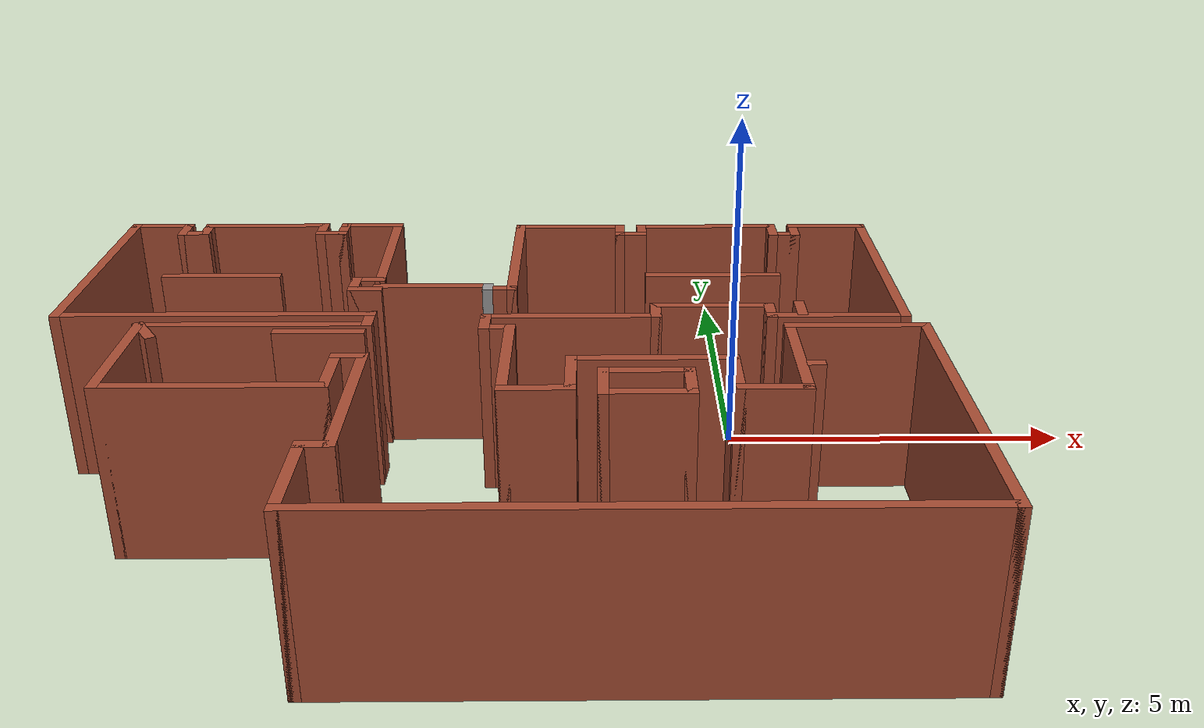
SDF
<?xml version='1.0'?>
<sdf version='1.6'>
  <model name='map_34'>
    <pose frame=''>-3.50648 -1.57327 0 0 -0 0</pose>
    <link name='Wall_0'>
      <collision name='Wall_0_Collision'>
        <geometry>
          <box>
            <size>1 0.15 2.5</size>
          </box>
        </geometry>
        <pose frame=''>0 0 1.25 0 -0 0</pose>
      </collision>
      <visual name='Wall_0_Visual'>
        <pose frame=''>0 0 1.25 0 -0 0</pose>
        <geometry>
          <box>
            <size>1 0.15 2.5</size>
          </box>
        </geometry>
        <material>
          <script>
            <uri>file://media/materials/scripts/gazebo.material</uri>
            <name>Gazebo/Bricks</name>
          </script>
          <ambient>1 1 1 1</ambient>
        </material>
        <meta>
          <layer>0</layer>
        </meta>
      </visual>
      <pose frame=''>-2.15 4.32421 0 0 -0 3.14159</pose>
    </link>
    <link name='Wall_1'>
      <collision name='Wall_1_Collision'>
        <geometry>
          <box>
            <size>0.5 0.15 2.5</size>
          </box>
        </geometry>
        <pose frame=''>0 0 1.25 0 -0 0</pose>
      </collision>
      <visual name='Wall_1_Visual'>
        <pose frame=''>0 0 1.25 0 -0 0</pose>
        <geometry>
          <box>
            <size>0.5 0.15 2.5</size>
          </box>
        </geometry>
        <material>
          <script>
            <uri>file://media/materials/scripts/gazebo.material</uri>
            <name>Gazebo/Bricks</name>
          </script>
          <ambient>1 1 1 1</ambient>
        </material>
        <meta>
          <layer>0</layer>
        </meta>
      </visual>
      <pose frame=''>-2.575 4.14921 0 0 -0 -1.5708</pose>
    </link>
    <link name='Wall_10'>
      <collision name='Wall_10_Collision'>
        <geometry>
          <box>
            <size>0.5 0.15 2.5</size>
          </box>
        </geometry>
        <pose frame=''>0 0 1.25 0 -0 0</pose>
      </collision>
      <visual name='Wall_10_Visual'>
        <pose frame=''>0 0 1.25 0 -0 0</pose>
        <geometry>
          <box>
            <size>0.5 0.15 2.5</size>
          </box>
        </geometry>
        <material>
          <script>
            <uri>file://media/materials/scripts/gazebo.material</uri>
            <name>Gazebo/Bricks</name>
          </script>
          <ambient>1 1 1 1</ambient>
        </material>
        <meta>
          <layer>0</layer>
        </meta>
      </visual>
      <pose frame=''>-4.95 3.97421 0 0 -0 3.14159</pose>
    </link>
    <link name='Wall_11'>
      <collision name='Wall_11_Collision'>
        <geometry>
          <box>
            <size>0.5 0.15 2.5</size>
          </box>
        </geometry>
        <pose frame=''>0 0 1.25 0 -0 0</pose>
      </collision>
      <visual name='Wall_11_Visual'>
        <pose frame=''>0 0 1.25 0 -0 0</pose>
        <geometry>
          <box>
            <size>0.5 0.15 2.5</size>
          </box>
        </geometry>
        <material>
          <script>
            <uri>file://media/materials/scripts/gazebo.material</uri>
            <name>Gazebo/Bricks</name>
          </script>
          <ambient>1 1 1 1</ambient>
        </material>
        <meta>
          <layer>0</layer>
        </meta>
      </visual>
      <pose frame=''>-5.125 4.14921 0 0 -0 1.5708</pose>
    </link>
    <link name='Wall_12'>
      <collision name='Wall_12_Collision'>
        <geometry>
          <box>
            <size>1 0.15 2.5</size>
          </box>
        </geometry>
        <pose frame=''>0 0 1.25 0 -0 0</pose>
      </collision>
      <visual name='Wall_12_Visual'>
        <pose frame=''>0 0 1.25 0 -0 0</pose>
        <geometry>
          <box>
            <size>1 0.15 2.5</size>
          </box>
        </geometry>
        <material>
          <script>
            <uri>file://media/materials/scripts/gazebo.material</uri>
            <name>Gazebo/Bricks</name>
          </script>
          <ambient>1 1 1 1</ambient>
        </material>
        <meta>
          <layer>0</layer>
        </meta>
      </visual>
      <pose frame=''>-5.55 4.32421 0 0 -0 3.14159</pose>
    </link>
    <link name='Wall_13'>
      <collision name='Wall_13_Collision'>
        <geometry>
          <box>
            <size>3.75 0.15 2.5</size>
          </box>
        </geometry>
        <pose frame=''>0 0 1.25 0 -0 0</pose>
      </collision>
      <visual name='Wall_13_Visual'>
        <pose frame=''>0 0 1.25 0 -0 0</pose>
        <geometry>
          <box>
            <size>3.75 0.15 2.5</size>
          </box>
        </geometry>
        <material>
          <script>
            <uri>file://media/materials/scripts/gazebo.material</uri>
            <name>Gazebo/Bricks</name>
          </script>
          <ambient>1 1 1 1</ambient>
        </material>
        <meta>
          <layer>0</layer>
        </meta>
      </visual>
      <pose frame=''>-5.975 2.52421 0 0 -0 -1.5708</pose>
    </link>
    <link name='Wall_14'>
      <collision name='Wall_14_Collision'>
        <geometry>
          <box>
            <size>4.5 0.15 2.5</size>
          </box>
        </geometry>
        <pose frame=''>0 0 1.25 0 -0 0</pose>
      </collision>
      <visual name='Wall_14_Visual'>
        <pose frame=''>0 0 1.25 0 -0 0</pose>
        <geometry>
          <box>
            <size>4.5 0.15 2.5</size>
          </box>
        </geometry>
        <material>
          <script>
            <uri>file://media/materials/scripts/gazebo.material</uri>
            <name>Gazebo/Bricks</name>
          </script>
          <ambient>1 1 1 1</ambient>
        </material>
        <meta>
          <layer>0</layer>
        </meta>
      </visual>
      <pose frame=''>-3.8 0.724211 0 0 -0 0</pose>
    </link>
    <link name='Wall_15'>
      <collision name='Wall_15_Collision'>
        <geometry>
          <box>
            <size>0.5 0.15 2.5</size>
          </box>
        </geometry>
        <pose frame=''>0 0 1.25 0 -0 0</pose>
      </collision>
      <visual name='Wall_15_Visual'>
        <pose frame=''>0 0 1.25 0 -0 0</pose>
        <geometry>
          <box>
            <size>0.5 0.15 2.5</size>
          </box>
        </geometry>
        <material>
          <script>
            <uri>file://media/materials/scripts/gazebo.material</uri>
            <name>Gazebo/Bricks</name>
          </script>
          <ambient>1 1 1 1</ambient>
        </material>
        <meta>
          <layer>0</layer>
        </meta>
      </visual>
      <pose frame=''>-1.625 0.549211 0 0 -0 -1.5708</pose>
    </link>
    <link name='Wall_16'>
      <collision name='Wall_16_Collision'>
        <geometry>
          <box>
            <size>3.25 0.15 2.5</size>
          </box>
        </geometry>
        <pose frame=''>0 0 1.25 0 -0 0</pose>
      </collision>
      <visual name='Wall_16_Visual'>
        <pose frame=''>0 0 1.25 0 -0 0</pose>
        <geometry>
          <box>
            <size>3.25 0.15 2.5</size>
          </box>
        </geometry>
        <material>
          <script>
            <uri>file://media/materials/scripts/gazebo.material</uri>
            <name>Gazebo/Bricks</name>
          </script>
          <ambient>1 1 1 1</ambient>
        </material>
        <meta>
          <layer>0</layer>
        </meta>
      </visual>
      <pose frame=''>-3.175 0.374211 0 0 -0 3.14159</pose>
    </link>
    <link name='Wall_17'>
      <collision name='Wall_17_Collision'>
        <geometry>
          <box>
            <size>2 0.15 2.5</size>
          </box>
        </geometry>
        <pose frame=''>0 0 1.25 0 -0 0</pose>
      </collision>
      <visual name='Wall_17_Visual'>
        <pose frame=''>0 0 1.25 0 -0 0</pose>
        <geometry>
          <box>
            <size>2 0.15 2.5</size>
          </box>
        </geometry>
        <material>
          <script>
            <uri>file://media/materials/scripts/gazebo.material</uri>
            <name>Gazebo/Bricks</name>
          </script>
          <ambient>1 1 1 1</ambient>
        </material>
        <meta>
          <layer>0</layer>
        </meta>
      </visual>
      <pose frame=''>-4.725 -0.550789 0 0 -0 -1.5708</pose>
    </link>
    <link name='Wall_18'>
      <collision name='Wall_18_Collision'>
        <geometry>
          <box>
            <size>3 0.15 2.5</size>
          </box>
        </geometry>
        <pose frame=''>0 0 1.25 0 -0 0</pose>
      </collision>
      <visual name='Wall_18_Visual'>
        <pose frame=''>0 0 1.25 0 -0 0</pose>
        <geometry>
          <box>
            <size>3 0.15 2.5</size>
          </box>
        </geometry>
        <material>
          <script>
            <uri>file://media/materials/scripts/gazebo.material</uri>
            <name>Gazebo/Bricks</name>
          </script>
          <ambient>1 1 1 1</ambient>
        </material>
        <meta>
          <layer>0</layer>
        </meta>
      </visual>
      <pose frame=''>-3.3 -1.47579 0 0 -0 0</pose>
    </link>
    <link name='Wall_19'>
      <collision name='Wall_19_Collision'>
        <geometry>
          <box>
            <size>1 0.15 2.5</size>
          </box>
        </geometry>
        <pose frame=''>0 0 1.25 0 -0 0</pose>
      </collision>
      <visual name='Wall_19_Visual'>
        <pose frame=''>0 0 1.25 0 -0 0</pose>
        <geometry>
          <box>
            <size>1 0.15 2.5</size>
          </box>
        </geometry>
        <material>
          <script>
            <uri>file://media/materials/scripts/gazebo.material</uri>
            <name>Gazebo/Bricks</name>
          </script>
          <ambient>1 1 1 1</ambient>
        </material>
        <meta>
          <layer>0</layer>
        </meta>
      </visual>
      <pose frame=''>-1.875 -1.05079 0 0 -0 1.5708</pose>
    </link>
    <link name='Wall_2'>
      <collision name='Wall_2_Collision'>
        <geometry>
          <box>
            <size>0.5 0.15 2.5</size>
          </box>
        </geometry>
        <pose frame=''>0 0 1.25 0 -0 0</pose>
      </collision>
      <visual name='Wall_2_Visual'>
        <pose frame=''>0 0 1.25 0 -0 0</pose>
        <geometry>
          <box>
            <size>0.5 0.15 2.5</size>
          </box>
        </geometry>
        <material>
          <script>
            <uri>file://media/materials/scripts/gazebo.material</uri>
            <name>Gazebo/Bricks</name>
          </script>
          <ambient>1 1 1 1</ambient>
        </material>
        <meta>
          <layer>0</layer>
        </meta>
      </visual>
      <pose frame=''>-2.75 3.97421 0 0 -0 3.14159</pose>
    </link>
    <link name='Wall_20'>
      <collision name='Wall_20_Collision'>
        <geometry>
          <box>
            <size>0.5 0.15 2.5</size>
          </box>
        </geometry>
        <pose frame=''>0 0 1.25 0 -0 0</pose>
      </collision>
      <visual name='Wall_20_Visual'>
        <pose frame=''>0 0 1.25 0 -0 0</pose>
        <geometry>
          <box>
            <size>0.5 0.15 2.5</size>
          </box>
        </geometry>
        <material>
          <script>
            <uri>file://media/materials/scripts/gazebo.material</uri>
            <name>Gazebo/Bricks</name>
          </script>
          <ambient>1 1 1 1</ambient>
        </material>
        <meta>
          <layer>0</layer>
        </meta>
      </visual>
      <pose frame=''>-1.7 -0.625789 0 0 -0 0</pose>
    </link>
    <link name='Wall_21'>
      <collision name='Wall_21_Collision'>
        <geometry>
          <box>
            <size>2.5 0.15 2.5</size>
          </box>
        </geometry>
        <pose frame=''>0 0 1.25 0 -0 0</pose>
      </collision>
      <visual name='Wall_21_Visual'>
        <pose frame=''>0 0 1.25 0 -0 0</pose>
        <geometry>
          <box>
            <size>2.5 0.15 2.5</size>
          </box>
        </geometry>
        <material>
          <script>
            <uri>file://media/materials/scripts/gazebo.material</uri>
            <name>Gazebo/Bricks</name>
          </script>
          <ambient>1 1 1 1</ambient>
        </material>
        <meta>
          <layer>0</layer>
        </meta>
      </visual>
      <pose frame=''>-1.525 -1.80079 0 0 -0 -1.5708</pose>
    </link>
    <link name='Wall_22'>
      <collision name='Wall_22_Collision'>
        <geometry>
          <box>
            <size>0.5 0.15 2.5</size>
          </box>
        </geometry>
        <pose frame=''>0 0 1.25 0 -0 0</pose>
      </collision>
      <visual name='Wall_22_Visual'>
        <pose frame=''>0 0 1.25 0 -0 0</pose>
        <geometry>
          <box>
            <size>0.5 0.15 2.5</size>
          </box>
        </geometry>
        <material>
          <script>
            <uri>file://media/materials/scripts/gazebo.material</uri>
            <name>Gazebo/Bricks</name>
          </script>
          <ambient>1 1 1 1</ambient>
        </material>
        <meta>
          <layer>0</layer>
        </meta>
      </visual>
      <pose frame=''>-1.7 -2.97579 0 0 -0 3.14159</pose>
    </link>
    <link name='Wall_23'>
      <collision name='Wall_23_Collision'>
        <geometry>
          <box>
            <size>1.5 0.15 2.5</size>
          </box>
        </geometry>
        <pose frame=''>0 0 1.25 0 -0 0</pose>
      </collision>
      <visual name='Wall_23_Visual'>
        <pose frame=''>0 0 1.25 0 -0 0</pose>
        <geometry>
          <box>
            <size>1.5 0.15 2.5</size>
          </box>
        </geometry>
        <material>
          <script>
            <uri>file://media/materials/scripts/gazebo.material</uri>
            <name>Gazebo/Bricks</name>
          </script>
          <ambient>1 1 1 1</ambient>
        </material>
        <meta>
          <layer>0</layer>
        </meta>
      </visual>
      <pose frame=''>-1.875 -3.65079 0 0 -0 -1.5708</pose>
    </link>
    <link name='Wall_24'>
      <collision name='Wall_24_Collision'>
        <geometry>
          <box>
            <size>8 0.15 2.5</size>
          </box>
        </geometry>
        <pose frame=''>0 0 1.25 0 -0 0</pose>
      </collision>
      <visual name='Wall_24_Visual'>
        <pose frame=''>0 0 1.25 0 -0 0</pose>
        <geometry>
          <box>
            <size>8 0.15 2.5</size>
          </box>
        </geometry>
        <material>
          <script>
            <uri>file://media/materials/scripts/gazebo.material</uri>
            <name>Gazebo/Bricks</name>
          </script>
          <ambient>0.435294 0.796078 0.67451 1</ambient>
        </material>
        <meta>
          <layer>0</layer>
        </meta>
      </visual>
      <pose frame=''>2.05 -4.32579 0 0 -0 0</pose>
    </link>
    <link name='Wall_25'>
      <collision name='Wall_25_Collision'>
        <geometry>
          <box>
            <size>4.75 0.15 2.5</size>
          </box>
        </geometry>
        <pose frame=''>0 0 1.25 0 -0 0</pose>
      </collision>
      <visual name='Wall_25_Visual'>
        <pose frame=''>0 0 1.25 0 -0 0</pose>
        <geometry>
          <box>
            <size>4.75 0.15 2.5</size>
          </box>
        </geometry>
        <material>
          <script>
            <uri>file://media/materials/scripts/gazebo.material</uri>
            <name>Gazebo/Bricks</name>
          </script>
          <ambient>1 1 1 1</ambient>
        </material>
        <meta>
          <layer>0</layer>
        </meta>
      </visual>
      <pose frame=''>5.975 -2.02579 0 0 -0 1.5708</pose>
    </link>
    <link name='Wall_26'>
      <collision name='Wall_26_Collision'>
        <geometry>
          <box>
            <size>2 0.15 2.5</size>
          </box>
        </geometry>
        <pose frame=''>0 0 1.25 0 -0 0</pose>
      </collision>
      <visual name='Wall_26_Visual'>
        <pose frame=''>0 0 1.25 0 -0 0</pose>
        <geometry>
          <box>
            <size>2 0.15 2.5</size>
          </box>
        </geometry>
        <material>
          <script>
            <uri>file://media/materials/scripts/gazebo.material</uri>
            <name>Gazebo/Bricks</name>
          </script>
          <ambient>1 1 1 1</ambient>
        </material>
        <meta>
          <layer>0</layer>
        </meta>
      </visual>
      <pose frame=''>5.05 0.274211 0 0 -0 3.14159</pose>
    </link>
    <link name='Wall_27'>
      <collision name='Wall_27_Collision'>
        <geometry>
          <box>
            <size>2 0.15 2.5</size>
          </box>
        </geometry>
        <pose frame=''>0 0 1.25 0 -0 0</pose>
      </collision>
      <visual name='Wall_27_Visual'>
        <pose frame=''>0 0 1.25 0 -0 0</pose>
        <geometry>
          <box>
            <size>2 0.15 2.5</size>
          </box>
        </geometry>
        <material>
          <script>
            <uri>file://media/materials/scripts/gazebo.material</uri>
            <name>Gazebo/Bricks</name>
          </script>
          <ambient>1 1 1 1</ambient>
        </material>
        <meta>
          <layer>0</layer>
        </meta>
      </visual>
      <pose frame=''>4.125 -0.650789 0 0 -0 -1.5708</pose>
    </link>
    <link name='Wall_28'>
      <collision name='Wall_28_Collision'>
        <geometry>
          <box>
            <size>1 0.15 2.5</size>
          </box>
        </geometry>
        <pose frame=''>0 0 1.25 0 -0 0</pose>
      </collision>
      <visual name='Wall_28_Visual'>
        <pose frame=''>0 0 1.25 0 -0 0</pose>
        <geometry>
          <box>
            <size>1 0.15 2.5</size>
          </box>
        </geometry>
        <material>
          <script>
            <uri>file://media/materials/scripts/gazebo.material</uri>
            <name>Gazebo/Bricks</name>
          </script>
          <ambient>1 1 1 1</ambient>
        </material>
        <meta>
          <layer>0</layer>
        </meta>
      </visual>
      <pose frame=''>3.7 -1.57579 0 0 -0 3.14159</pose>
    </link>
    <link name='Wall_29'>
      <collision name='Wall_29_Collision'>
        <geometry>
          <box>
            <size>1 0.15 2.5</size>
          </box>
        </geometry>
        <pose frame=''>0 0 1.25 0 -0 0</pose>
      </collision>
      <visual name='Wall_29_Visual'>
        <pose frame=''>0 0 1.25 0 -0 0</pose>
        <geometry>
          <box>
            <size>1 0.15 2.5</size>
          </box>
        </geometry>
        <material>
          <script>
            <uri>file://media/materials/scripts/gazebo.material</uri>
            <name>Gazebo/Bricks</name>
          </script>
          <ambient>1 1 1 1</ambient>
        </material>
        <meta>
          <layer>0</layer>
        </meta>
      </visual>
      <pose frame=''>3.275 -1.15079 0 0 -0 1.5708</pose>
    </link>
    <link name='Wall_30'>
      <collision name='Wall_30_Collision'>
        <geometry>
          <box>
            <size>2.25 0.15 2.5</size>
          </box>
        </geometry>
        <pose frame=''>0 0 1.25 0 -0 0</pose>
      </collision>
      <visual name='Wall_30_Visual'>
        <pose frame=''>0 0 1.25 0 -0 0</pose>
        <geometry>
          <box>
            <size>2.25 0.15 2.5</size>
          </box>
        </geometry>
        <material>
          <script>
            <uri>file://media/materials/scripts/gazebo.material</uri>
            <name>Gazebo/Bricks</name>
          </script>
          <ambient>1 1 1 1</ambient>
        </material>
        <meta>
          <layer>0</layer>
        </meta>
      </visual>
      <pose frame=''>2.225 -0.725789 0 0 -0 3.14159</pose>
    </link>
    <link name='Wall_31'>
      <collision name='Wall_31_Collision'>
        <geometry>
          <box>
            <size>1 0.15 2.5</size>
          </box>
        </geometry>
        <pose frame=''>0 0 1.25 0 -0 0</pose>
      </collision>
      <visual name='Wall_31_Visual'>
        <pose frame=''>0 0 1.25 0 -0 0</pose>
        <geometry>
          <box>
            <size>1 0.15 2.5</size>
          </box>
        </geometry>
        <material>
          <script>
            <uri>file://media/materials/scripts/gazebo.material</uri>
            <name>Gazebo/Bricks</name>
          </script>
          <ambient>1 1 1 1</ambient>
        </material>
        <meta>
          <layer>0</layer>
        </meta>
      </visual>
      <pose frame=''>1.175 -1.15079 0 0 -0 -1.5708</pose>
    </link>
    <link name='Wall_32'>
      <collision name='Wall_32_Collision'>
        <geometry>
          <box>
            <size>1 0.15 2.5</size>
          </box>
        </geometry>
        <pose frame=''>0 0 1.25 0 -0 0</pose>
      </collision>
      <visual name='Wall_32_Visual'>
        <pose frame=''>0 0 1.25 0 -0 0</pose>
        <geometry>
          <box>
            <size>1 0.15 2.5</size>
          </box>
        </geometry>
        <material>
          <script>
            <uri>file://media/materials/scripts/gazebo.material</uri>
            <name>Gazebo/Bricks</name>
          </script>
          <ambient>1 1 1 1</ambient>
        </material>
        <meta>
          <layer>0</layer>
        </meta>
      </visual>
      <pose frame=''>0.75 -1.57579 0 0 -0 3.14159</pose>
    </link>
    <link name='Wall_33'>
      <collision name='Wall_33_Collision'>
        <geometry>
          <box>
            <size>2 0.15 2.5</size>
          </box>
        </geometry>
        <pose frame=''>0 0 1.25 0 -0 0</pose>
      </collision>
      <visual name='Wall_33_Visual'>
        <pose frame=''>0 0 1.25 0 -0 0</pose>
        <geometry>
          <box>
            <size>2 0.15 2.5</size>
          </box>
        </geometry>
        <material>
          <script>
            <uri>file://media/materials/scripts/gazebo.material</uri>
            <name>Gazebo/Bricks</name>
          </script>
          <ambient>1 1 1 1</ambient>
        </material>
        <meta>
          <layer>0</layer>
        </meta>
      </visual>
      <pose frame=''>0.325 -0.650789 0 0 -0 1.5708</pose>
    </link>
    <link name='Wall_34'>
      <collision name='Wall_34_Collision'>
        <geometry>
          <box>
            <size>0.5 0.15 2.5</size>
          </box>
        </geometry>
        <pose frame=''>0 0 1.25 0 -0 0</pose>
      </collision>
      <visual name='Wall_34_Visual'>
        <pose frame=''>0 0 1.25 0 -0 0</pose>
        <geometry>
          <box>
            <size>0.5 0.15 2.5</size>
          </box>
        </geometry>
        <material>
          <script>
            <uri>file://media/materials/scripts/gazebo.material</uri>
            <name>Gazebo/Bricks</name>
          </script>
          <ambient>1 1 1 1</ambient>
        </material>
        <meta>
          <layer>0</layer>
        </meta>
      </visual>
      <pose frame=''>0.15 0.274211 0 0 -0 3.14159</pose>
    </link>
    <link name='Wall_35'>
      <collision name='Wall_35_Collision'>
        <geometry>
          <box>
            <size>0.5 0.15 2.5</size>
          </box>
        </geometry>
        <pose frame=''>0 0 1.25 0 -0 0</pose>
      </collision>
      <visual name='Wall_35_Visual'>
        <pose frame=''>0 0 1.25 0 -0 0</pose>
        <geometry>
          <box>
            <size>0.5 0.15 2.5</size>
          </box>
        </geometry>
        <material>
          <script>
            <uri>file://media/materials/scripts/gazebo.material</uri>
            <name>Gazebo/Bricks</name>
          </script>
          <ambient>1 1 1 1</ambient>
        </material>
        <meta>
          <layer>0</layer>
        </meta>
      </visual>
      <pose frame=''>-0.025 0.449211 0 0 -0 1.5708</pose>
    </link>
    <link name='Wall_36'>
      <collision name='Wall_36_Collision'>
        <geometry>
          <box>
            <size>2.5 0.15 2.5</size>
          </box>
        </geometry>
        <pose frame=''>0 0 1.25 0 -0 0</pose>
      </collision>
      <visual name='Wall_36_Visual'>
        <pose frame=''>0 0 1.25 0 -0 0</pose>
        <geometry>
          <box>
            <size>2.5 0.15 2.5</size>
          </box>
        </geometry>
        <material>
          <script>
            <uri>file://media/materials/scripts/gazebo.material</uri>
            <name>Gazebo/Bricks</name>
          </script>
          <ambient>1 1 1 1</ambient>
        </material>
        <meta>
          <layer>0</layer>
        </meta>
      </visual>
      <pose frame=''>1.15 0.624211 0 0 -0 0</pose>
    </link>
    <link name='Wall_37'>
      <collision name='Wall_37_Collision'>
        <geometry>
          <box>
            <size>0.5 0.15 2.5</size>
          </box>
        </geometry>
        <pose frame=''>0 0 1.25 0 -0 0</pose>
      </collision>
      <visual name='Wall_37_Visual'>
        <pose frame=''>0 0 1.25 0 -0 0</pose>
        <geometry>
          <box>
            <size>0.5 0.15 2.5</size>
          </box>
        </geometry>
        <material>
          <script>
            <uri>file://media/materials/scripts/gazebo.material</uri>
            <name>Gazebo/Bricks</name>
          </script>
          <ambient>1 1 1 1</ambient>
        </material>
        <meta>
          <layer>0</layer>
        </meta>
      </visual>
      <pose frame=''>2.325 0.799211 0 0 -0 1.5708</pose>
    </link>
    <link name='Wall_38'>
      <collision name='Wall_38_Collision'>
        <geometry>
          <box>
            <size>1.75 0.15 2.5</size>
          </box>
        </geometry>
        <pose frame=''>0 0 1.25 0 -0 0</pose>
      </collision>
      <visual name='Wall_38_Visual'>
        <pose frame=''>0 0 1.25 0 -0 0</pose>
        <geometry>
          <box>
            <size>1.75 0.15 2.5</size>
          </box>
        </geometry>
        <material>
          <script>
            <uri>file://media/materials/scripts/gazebo.material</uri>
            <name>Gazebo/Bricks</name>
          </script>
          <ambient>1 1 1 1</ambient>
        </material>
        <meta>
          <layer>0</layer>
        </meta>
      </visual>
      <pose frame=''>3.125 0.974211 0 0 -0 0</pose>
    </link>
    <link name='Wall_39'>
      <collision name='Wall_39_Collision'>
        <geometry>
          <box>
            <size>0.5 0.15 2.5</size>
          </box>
        </geometry>
        <pose frame=''>0 0 1.25 0 -0 0</pose>
      </collision>
      <visual name='Wall_39_Visual'>
        <pose frame=''>0 0 1.25 0 -0 0</pose>
        <geometry>
          <box>
            <size>0.5 0.15 2.5</size>
          </box>
        </geometry>
        <material>
          <script>
            <uri>file://media/materials/scripts/gazebo.material</uri>
            <name>Gazebo/Bricks</name>
          </script>
          <ambient>1 1 1 1</ambient>
        </material>
        <meta>
          <layer>0</layer>
        </meta>
      </visual>
      <pose frame=''>3.925 0.799211 0 0 -0 -1.5708</pose>
    </link>
    <link name='Wall_40'>
      <collision name='Wall_40_Collision'>
        <geometry>
          <box>
            <size>2 0.15 2.5</size>
          </box>
        </geometry>
        <pose frame=''>0 0 1.25 0 -0 0</pose>
      </collision>
      <visual name='Wall_40_Visual'>
        <pose frame=''>0 0 1.25 0 -0 0</pose>
        <geometry>
          <box>
            <size>2 0.15 2.5</size>
          </box>
        </geometry>
        <material>
          <script>
            <uri>file://media/materials/scripts/gazebo.material</uri>
            <name>Gazebo/Bricks</name>
          </script>
          <ambient>1 1 1 1</ambient>
        </material>
        <meta>
          <layer>0</layer>
        </meta>
      </visual>
      <pose frame=''>4.85 0.624211 0 0 -0 0</pose>
    </link>
    <link name='Wall_5'>
      <collision name='Wall_5_Collision'>
        <geometry>
          <box>
            <size>0.5 0.15 2.5</size>
          </box>
        </geometry>
        <pose frame=''>0 0 1.25 0 -0 0</pose>
      </collision>
      <visual name='Wall_5_Visual'>
        <pose frame=''>0 0 1.25 0 -0 0</pose>
        <geometry>
          <box>
            <size>0.5 0.15 2.5</size>
          </box>
        </geometry>
        <material>
          <script>
            <uri>file://media/materials/scripts/gazebo.material</uri>
            <name>Gazebo/Bricks</name>
          </script>
          <ambient>1 1 1 1</ambient>
        </material>
        <meta>
          <layer>0</layer>
        </meta>
      </visual>
      <pose frame=''>-2.925 4.14921 0 0 -0 1.5708</pose>
    </link>
    <link name='Wall_54'>
      <collision name='Wall_54_Collision'>
        <geometry>
          <box>
            <size>3.75 0.15 2.5</size>
          </box>
        </geometry>
        <pose frame=''>0 0 1.25 0 -0 0</pose>
      </collision>
      <visual name='Wall_54_Visual'>
        <pose frame=''>0 0 1.25 0 -0 0</pose>
        <geometry>
          <box>
            <size>3.75 0.15 2.5</size>
          </box>
        </geometry>
        <material>
          <script>
            <uri>file://media/materials/scripts/gazebo.material</uri>
            <name>Gazebo/Bricks</name>
          </script>
          <ambient>1 1 1 1</ambient>
        </material>
        <meta>
          <layer>0</layer>
        </meta>
      </visual>
      <pose frame=''>5.775 2.42421 0 0 -0 1.5708</pose>
    </link>
    <link name='Wall_55'>
      <collision name='Wall_55_Collision'>
        <geometry>
          <box>
            <size>1.25 0.15 2.5</size>
          </box>
        </geometry>
        <pose frame=''>0 0 1.25 0 -0 0</pose>
      </collision>
      <visual name='Wall_55_Visual'>
        <pose frame=''>0 0 1.25 0 -0 0</pose>
        <geometry>
          <box>
            <size>1.25 0.15 2.5</size>
          </box>
        </geometry>
        <material>
          <script>
            <uri>file://media/materials/scripts/gazebo.material</uri>
            <name>Gazebo/Bricks</name>
          </script>
          <ambient>1 1 1 1</ambient>
        </material>
        <meta>
          <layer>0</layer>
        </meta>
      </visual>
      <pose frame=''>5.225 4.22421 0 0 -0 3.14159</pose>
    </link>
    <link name='Wall_56'>
      <collision name='Wall_56_Collision'>
        <geometry>
          <box>
            <size>0.5 0.15 2.5</size>
          </box>
        </geometry>
        <pose frame=''>0 0 1.25 0 -0 0</pose>
      </collision>
      <visual name='Wall_56_Visual'>
        <pose frame=''>0 0 1.25 0 -0 0</pose>
        <geometry>
          <box>
            <size>0.5 0.15 2.5</size>
          </box>
        </geometry>
        <material>
          <script>
            <uri>file://media/materials/scripts/gazebo.material</uri>
            <name>Gazebo/Bricks</name>
          </script>
          <ambient>1 1 1 1</ambient>
        </material>
        <meta>
          <layer>0</layer>
        </meta>
      </visual>
      <pose frame=''>4.675 4.04921 0 0 -0 -1.5708</pose>
    </link>
    <link name='Wall_57'>
      <collision name='Wall_57_Collision'>
        <geometry>
          <box>
            <size>0.5 0.15 2.5</size>
          </box>
        </geometry>
        <pose frame=''>0 0 1.25 0 -0 0</pose>
      </collision>
      <visual name='Wall_57_Visual'>
        <pose frame=''>0 0 1.25 0 -0 0</pose>
        <geometry>
          <box>
            <size>0.5 0.15 2.5</size>
          </box>
        </geometry>
        <material>
          <script>
            <uri>file://media/materials/scripts/gazebo.material</uri>
            <name>Gazebo/Bricks</name>
          </script>
          <ambient>1 1 1 1</ambient>
        </material>
        <meta>
          <layer>0</layer>
        </meta>
      </visual>
      <pose frame=''>4.5 3.87421 0 0 -0 3.14159</pose>
    </link>
    <link name='Wall_58'>
      <collision name='Wall_58_Collision'>
        <geometry>
          <box>
            <size>0.5 0.15 2.5</size>
          </box>
        </geometry>
        <pose frame=''>0 0 1.25 0 -0 0</pose>
      </collision>
      <visual name='Wall_58_Visual'>
        <pose frame=''>0 0 1.25 0 -0 0</pose>
        <geometry>
          <box>
            <size>0.5 0.15 2.5</size>
          </box>
        </geometry>
        <material>
          <script>
            <uri>file://media/materials/scripts/gazebo.material</uri>
            <name>Gazebo/Bricks</name>
          </script>
          <ambient>1 1 1 1</ambient>
        </material>
        <meta>
          <layer>0</layer>
        </meta>
      </visual>
      <pose frame=''>4.325 4.04921 0 0 -0 1.5708</pose>
    </link>
    <link name='Wall_59'>
      <collision name='Wall_59_Collision'>
        <geometry>
          <box>
            <size>2.25 0.15 2.5</size>
          </box>
        </geometry>
        <pose frame=''>0 0 1.25 0 -0 0</pose>
      </collision>
      <visual name='Wall_59_Visual'>
        <pose frame=''>0 0 1.25 0 -0 0</pose>
        <geometry>
          <box>
            <size>2.25 0.15 2.5</size>
          </box>
        </geometry>
        <material>
          <script>
            <uri>file://media/materials/scripts/gazebo.material</uri>
            <name>Gazebo/Bricks</name>
          </script>
          <ambient>1 1 1 1</ambient>
        </material>
        <meta>
          <layer>0</layer>
        </meta>
      </visual>
      <pose frame=''>3.275 4.22421 0 0 -0 3.14159</pose>
    </link>
    <link name='Wall_60'>
      <collision name='Wall_60_Collision'>
        <geometry>
          <box>
            <size>0.5 0.15 2.5</size>
          </box>
        </geometry>
        <pose frame=''>0 0 1.25 0 -0 0</pose>
      </collision>
      <visual name='Wall_60_Visual'>
        <pose frame=''>0 0 1.25 0 -0 0</pose>
        <geometry>
          <box>
            <size>0.5 0.15 2.5</size>
          </box>
        </geometry>
        <material>
          <script>
            <uri>file://media/materials/scripts/gazebo.material</uri>
            <name>Gazebo/Bricks</name>
          </script>
          <ambient>1 1 1 1</ambient>
        </material>
        <meta>
          <layer>0</layer>
        </meta>
      </visual>
      <pose frame=''>2.225 4.04921 0 0 -0 -1.5708</pose>
    </link>
    <link name='Wall_63'>
      <collision name='Wall_63_Collision'>
        <geometry>
          <box>
            <size>0.5 0.15 2.5</size>
          </box>
        </geometry>
        <pose frame=''>0 0 1.25 0 -0 0</pose>
      </collision>
      <visual name='Wall_63_Visual'>
        <pose frame=''>0 0 1.25 0 -0 0</pose>
        <geometry>
          <box>
            <size>0.5 0.15 2.5</size>
          </box>
        </geometry>
        <material>
          <script>
            <uri>file://media/materials/scripts/gazebo.material</uri>
            <name>Gazebo/Bricks</name>
          </script>
          <ambient>1 1 1 1</ambient>
        </material>
        <meta>
          <layer>0</layer>
        </meta>
      </visual>
      <pose frame=''>2.05 3.87421 0 0 -0 3.14159</pose>
    </link>
    <link name='Wall_64'>
      <collision name='Wall_64_Collision'>
        <geometry>
          <box>
            <size>0.5 0.15 2.5</size>
          </box>
        </geometry>
        <pose frame=''>0 0 1.25 0 -0 0</pose>
      </collision>
      <visual name='Wall_64_Visual'>
        <pose frame=''>0 0 1.25 0 -0 0</pose>
        <geometry>
          <box>
            <size>0.5 0.15 2.5</size>
          </box>
        </geometry>
        <material>
          <script>
            <uri>file://media/materials/scripts/gazebo.material</uri>
            <name>Gazebo/Bricks</name>
          </script>
          <ambient>1 1 1 1</ambient>
        </material>
        <meta>
          <layer>0</layer>
        </meta>
      </visual>
      <pose frame=''>1.875 4.04921 0 0 -0 1.5708</pose>
    </link>
    <link name='Wall_65'>
      <collision name='Wall_65_Collision'>
        <geometry>
          <box>
            <size>1.75 0.15 2.5</size>
          </box>
        </geometry>
        <pose frame=''>0 0 1.25 0 -0 0</pose>
      </collision>
      <visual name='Wall_65_Visual'>
        <pose frame=''>0 0 1.25 0 -0 0</pose>
        <geometry>
          <box>
            <size>1.75 0.15 2.5</size>
          </box>
        </geometry>
        <material>
          <script>
            <uri>file://media/materials/scripts/gazebo.material</uri>
            <name>Gazebo/Bricks</name>
          </script>
          <ambient>1 1 1 1</ambient>
        </material>
        <meta>
          <layer>0</layer>
        </meta>
      </visual>
      <pose frame=''>1.075 4.22421 0 0 -0 3.14159</pose>
    </link>
    <link name='Wall_66'>
      <collision name='Wall_66_Collision'>
        <geometry>
          <box>
            <size>2.75 0.15 2.5</size>
          </box>
        </geometry>
        <pose frame=''>0 0 1.25 0 -0 0</pose>
      </collision>
      <visual name='Wall_66_Visual'>
        <pose frame=''>0 0 1.25 0 -0 0</pose>
        <geometry>
          <box>
            <size>2.75 0.15 2.5</size>
          </box>
        </geometry>
        <material>
          <script>
            <uri>file://media/materials/scripts/gazebo.material</uri>
            <name>Gazebo/Bricks</name>
          </script>
          <ambient>1 1 1 1</ambient>
        </material>
        <meta>
          <layer>0</layer>
        </meta>
      </visual>
      <pose frame=''>0.275 2.92421 0 0 -0 -1.5708</pose>
    </link>
    <link name='Wall_67'>
      <collision name='Wall_67_Collision'>
        <geometry>
          <box>
            <size>0.5 0.15 2.5</size>
          </box>
        </geometry>
        <pose frame=''>0 0 1.25 0 -0 0</pose>
      </collision>
      <visual name='Wall_67_Visual'>
        <pose frame=''>0 0 1.25 0 -0 0</pose>
        <geometry>
          <box>
            <size>0.5 0.15 2.5</size>
          </box>
        </geometry>
        <material>
          <script>
            <uri>file://media/materials/scripts/gazebo.material</uri>
            <name>Gazebo/Bricks</name>
          </script>
          <ambient>1 1 1 1</ambient>
        </material>
        <meta>
          <layer>0</layer>
        </meta>
      </visual>
      <pose frame=''>0.1 1.62421 0 0 -0 3.14159</pose>
    </link>
    <link name='Wall_68'>
      <collision name='Wall_68_Collision'>
        <geometry>
          <box>
            <size>0.25 0.15 2.5</size>
          </box>
        </geometry>
        <pose frame=''>0 0 1.25 0 -0 0</pose>
      </collision>
      <visual name='Wall_68_Visual'>
        <pose frame=''>0 0 1.25 0 -0 0</pose>
        <geometry>
          <box>
            <size>0.25 0.15 2.5</size>
          </box>
        </geometry>
        <material>
          <script>
            <uri>file://media/materials/scripts/gazebo.material</uri>
            <name>Gazebo/Grey</name>
          </script>
          <ambient>1 1 1 1</ambient>
        </material>
        <meta>
          <layer>0</layer>
        </meta>
      </visual>
      <pose frame=''>-0.075 1.67421 0 0 -0 1.5708</pose>
    </link>
    <link name='Wall_69'>
      <collision name='Wall_69_Collision'>
        <geometry>
          <box>
            <size>1.75 0.15 2.5</size>
          </box>
        </geometry>
        <pose frame=''>0 0 1.25 0 -0 0</pose>
      </collision>
      <visual name='Wall_69_Visual'>
        <pose frame=''>0 0 1.25 0 -0 0</pose>
        <geometry>
          <box>
            <size>1.75 0.15 2.5</size>
          </box>
        </geometry>
        <material>
          <script>
            <uri>file://media/materials/scripts/gazebo.material</uri>
            <name>Gazebo/Bricks</name>
          </script>
          <ambient>1 1 1 1</ambient>
        </material>
        <meta>
          <layer>0</layer>
        </meta>
      </visual>
      <pose frame=''>-0.875 1.72421 0 0 -0 3.14159</pose>
    </link>
    <link name='Wall_70'>
      <collision name='Wall_70_Collision'>
        <geometry>
          <box>
            <size>0.25 0.15 2.5</size>
          </box>
        </geometry>
        <pose frame=''>0 0 1.25 0 -0 0</pose>
      </collision>
      <visual name='Wall_70_Visual'>
        <pose frame=''>0 0 1.25 0 -0 0</pose>
        <geometry>
          <box>
            <size>0.25 0.15 2.5</size>
          </box>
        </geometry>
        <material>
          <script>
            <uri>file://media/materials/scripts/gazebo.material</uri>
            <name>Gazebo/Bricks</name>
          </script>
          <ambient>1 1 1 1</ambient>
        </material>
        <meta>
          <layer>0</layer>
        </meta>
      </visual>
      <pose frame=''>-1.675 1.67421 0 0 -0 -1.5708</pose>
    </link>
    <link name='Wall_71'>
      <collision name='Wall_71_Collision'>
        <geometry>
          <box>
            <size>0.5 0.15 2.5</size>
          </box>
        </geometry>
        <pose frame=''>0 0 1.25 0 -0 0</pose>
      </collision>
      <visual name='Wall_71_Visual'>
        <pose frame=''>0 0 1.25 0 -0 0</pose>
        <geometry>
          <box>
            <size>0.5 0.15 2.5</size>
          </box>
        </geometry>
        <material>
          <script>
            <uri>file://media/materials/scripts/gazebo.material</uri>
            <name>Gazebo/Bricks</name>
          </script>
          <ambient>1 1 1 1</ambient>
        </material>
        <meta>
          <layer>0</layer>
        </meta>
      </visual>
      <pose frame=''>-1.85 1.62421 0 0 -0 3.14159</pose>
    </link>
    <link name='Wall_72'>
      <collision name='Wall_72_Collision'>
        <geometry>
          <box>
            <size>0.5 0.15 2.5</size>
          </box>
        </geometry>
        <pose frame=''>0 0 1.25 0 -0 0</pose>
      </collision>
      <visual name='Wall_72_Visual'>
        <pose frame=''>0 0 1.25 0 -0 0</pose>
        <geometry>
          <box>
            <size>0.5 0.15 2.5</size>
          </box>
        </geometry>
        <material>
          <script>
            <uri>file://media/materials/scripts/gazebo.material</uri>
            <name>Gazebo/Bricks</name>
          </script>
          <ambient>1 1 1 1</ambient>
        </material>
        <meta>
          <layer>0</layer>
        </meta>
      </visual>
      <pose frame=''>-2.025 1.79921 0 0 -0 1.5708</pose>
    </link>
    <link name='Wall_73'>
      <collision name='Wall_73_Collision'>
        <geometry>
          <box>
            <size>0.5 0.15 2.5</size>
          </box>
        </geometry>
        <pose frame=''>0 0 1.25 0 -0 0</pose>
      </collision>
      <visual name='Wall_73_Visual'>
        <pose frame=''>0 0 1.25 0 -0 0</pose>
        <geometry>
          <box>
            <size>0.5 0.15 2.5</size>
          </box>
        </geometry>
        <material>
          <script>
            <uri>file://media/materials/scripts/gazebo.material</uri>
            <name>Gazebo/Bricks</name>
          </script>
          <ambient>1 1 1 1</ambient>
        </material>
        <meta>
          <layer>0</layer>
        </meta>
      </visual>
      <pose frame=''>-1.85 1.97421 0 0 -0 0</pose>
    </link>
    <link name='Wall_74'>
      <collision name='Wall_74_Collision'>
        <geometry>
          <box>
            <size>2.50053 0.15 2.5</size>
          </box>
        </geometry>
        <pose frame=''>0 0 1.25 0 -0 0</pose>
      </collision>
      <visual name='Wall_74_Visual'>
        <pose frame=''>0 0 1.25 0 -0 0</pose>
        <geometry>
          <box>
            <size>2.50053 0.15 2.5</size>
          </box>
        </geometry>
        <material>
          <script>
            <uri>file://media/materials/scripts/gazebo.material</uri>
            <name>Gazebo/Bricks</name>
          </script>
          <ambient>1 1 1 1</ambient>
        </material>
        <meta>
          <layer>0</layer>
        </meta>
      </visual>
      <pose frame=''>-1.7 3.14921 0 0 -0 1.59207</pose>
    </link>
    <link name='Wall_76'>
      <collision name='Wall_76_Collision'>
        <geometry>
          <box>
            <size>1.75 0.15 2.5</size>
          </box>
        </geometry>
        <pose frame=''>0 0 1.25 0 -0 0</pose>
      </collision>
      <visual name='Wall_76_Visual'>
        <pose frame=''>0 0 1.25 0 -0 0</pose>
        <geometry>
          <box>
            <size>1.75 0.15 2.5</size>
          </box>
        </geometry>
        <material>
          <script>
            <uri>file://media/materials/scripts/gazebo.material</uri>
            <name>Gazebo/Bricks</name>
          </script>
          <ambient>1 1 1 1</ambient>
        </material>
        <meta>
          <layer>0</layer>
        </meta>
      </visual>
      <pose frame=''>-4.04763 2.14993 0 0 -0 0</pose>
    </link>
    <link name='Wall_78'>
      <collision name='Wall_78_Collision'>
        <geometry>
          <box>
            <size>2 0.15 2.5</size>
          </box>
        </geometry>
        <pose frame=''>0 0 1.25 0 -0 0</pose>
      </collision>
      <visual name='Wall_78_Visual'>
        <pose frame=''>0 0 1.25 0 -0 0</pose>
        <geometry>
          <box>
            <size>2 0.15 2.5</size>
          </box>
        </geometry>
        <material>
          <script>
            <uri>file://media/materials/scripts/gazebo.material</uri>
            <name>Gazebo/Bricks</name>
          </script>
          <ambient>1 1 1 1</ambient>
        </material>
        <meta>
          <layer>0</layer>
        </meta>
      </visual>
      <pose frame=''>3.22472 2.1268 0 0 -0 0</pose>
    </link>
    <link name='Wall_8'>
      <collision name='Wall_8_Collision'>
        <geometry>
          <box>
            <size>2 0.15 2.5</size>
          </box>
        </geometry>
        <pose frame=''>0 0 1.25 0 -0 0</pose>
      </collision>
      <visual name='Wall_8_Visual'>
        <pose frame=''>0 0 1.25 0 -0 0</pose>
        <geometry>
          <box>
            <size>2 0.15 2.5</size>
          </box>
        </geometry>
        <material>
          <script>
            <uri>file://media/materials/scripts/gazebo.material</uri>
            <name>Gazebo/Bricks</name>
          </script>
          <ambient>1 1 1 1</ambient>
        </material>
        <meta>
          <layer>0</layer>
        </meta>
      </visual>
      <pose frame=''>-3.85 4.32421 0 0 -0 3.14159</pose>
    </link>
    <link name='Wall_80'>
      <collision name='Wall_80_Collision'>
        <geometry>
          <box>
            <size>0.5 0.15 2.5</size>
          </box>
        </geometry>
        <pose frame=''>0 0 1.25 0 -0 0</pose>
      </collision>
      <visual name='Wall_80_Visual'>
        <pose frame=''>0 0 1.25 0 -0 0</pose>
        <geometry>
          <box>
            <size>0.5 0.15 2.5</size>
          </box>
        </geometry>
        <material>
          <script>
            <uri>file://media/materials/scripts/gazebo.material</uri>
            <name>Gazebo/Bricks</name>
          </script>
          <ambient>1 1 1 1</ambient>
        </material>
        <meta>
          <layer>0</layer>
        </meta>
      </visual>
      <pose frame=''>4.35835 0.864665 0 0 -0 -1.5708</pose>
    </link>
    <link name='Wall_82'>
      <collision name='Wall_82_Collision'>
        <geometry>
          <box>
            <size>1.25 0.15 2.5</size>
          </box>
        </geometry>
        <pose frame=''>0 0 1.25 0 -0 0</pose>
      </collision>
      <visual name='Wall_82_Visual'>
        <pose frame=''>0 0 1.25 0 -0 0</pose>
        <geometry>
          <box>
            <size>1.25 0.15 2.5</size>
          </box>
        </geometry>
        <material>
          <script>
            <uri>file://media/materials/scripts/gazebo.material</uri>
            <name>Gazebo/Bricks</name>
          </script>
          <ambient>1 1 1 1</ambient>
        </material>
        <meta>
          <layer>0</layer>
        </meta>
      </visual>
      <pose frame=''>-2.23901 0.137571 0 0 -0 0</pose>
    </link>
    <link name='Wall_84'>
      <collision name='Wall_84_Collision'>
        <geometry>
          <box>
            <size>0.25 0.15 2.5</size>
          </box>
        </geometry>
        <pose frame=''>0 0 1.25 0 -0 0</pose>
      </collision>
      <visual name='Wall_84_Visual'>
        <pose frame=''>0 0 1.25 0 -0 0</pose>
        <geometry>
          <box>
            <size>0.25 0.15 2.5</size>
          </box>
        </geometry>
        <material>
          <script>
            <uri>file://media/materials/scripts/gazebo.material</uri>
            <name>Gazebo/Bricks</name>
          </script>
          <ambient>1 1 1 1</ambient>
        </material>
        <meta>
          <layer>0</layer>
        </meta>
      </visual>
      <pose frame=''>4.31583 -0.903306 0 0 -0 0</pose>
    </link>
    <link name='Wall_86'>
      <collision name='Wall_86_Collision'>
        <geometry>
          <box>
            <size>0.75 0.15 2.5</size>
          </box>
        </geometry>
        <pose frame=''>0 0 1.25 0 -0 0</pose>
      </collision>
      <visual name='Wall_86_Visual'>
        <pose frame=''>0 0 1.25 0 -0 0</pose>
        <geometry>
          <box>
            <size>0.75 0.15 2.5</size>
          </box>
        </geometry>
        <material>
          <script>
            <uri>file://media/materials/scripts/gazebo.material</uri>
            <name>Gazebo/Bricks</name>
          </script>
          <ambient>1 1 1 1</ambient>
        </material>
        <meta>
          <layer>0</layer>
        </meta>
      </visual>
      <pose frame=''>1.58268 -1.38835 0 0 -0 -1.5708</pose>
    </link>
    <link name='Wall_87'>
      <collision name='Wall_87_Collision'>
        <geometry>
          <box>
            <size>1.25 0.15 2.5</size>
          </box>
        </geometry>
        <pose frame=''>0 0 1.25 0 -0 0</pose>
      </collision>
      <visual name='Wall_87_Visual'>
        <pose frame=''>0 0 1.25 0 -0 0</pose>
        <geometry>
          <box>
            <size>1.25 0.15 2.5</size>
          </box>
        </geometry>
        <material>
          <script>
            <uri>file://media/materials/scripts/gazebo.material</uri>
            <name>Gazebo/Bricks</name>
          </script>
          <ambient>1 1 1 1</ambient>
        </material>
        <meta>
          <layer>0</layer>
        </meta>
      </visual>
      <pose frame=''>2.13268 -1.68835 0 0 -0 0</pose>
    </link>
    <link name='Wall_88'>
      <collision name='Wall_88_Collision'>
        <geometry>
          <box>
            <size>0.75 0.15 2.5</size>
          </box>
        </geometry>
        <pose frame=''>0 0 1.25 0 -0 0</pose>
      </collision>
      <visual name='Wall_88_Visual'>
        <pose frame=''>0 0 1.25 0 -0 0</pose>
        <geometry>
          <box>
            <size>0.75 0.15 2.5</size>
          </box>
        </geometry>
        <material>
          <script>
            <uri>file://media/materials/scripts/gazebo.material</uri>
            <name>Gazebo/Bricks</name>
          </script>
          <ambient>1 1 1 1</ambient>
        </material>
        <meta>
          <layer>0</layer>
        </meta>
      </visual>
      <pose frame=''>2.68268 -1.38835 0 0 -0 1.5708</pose>
    </link>
    <link name='Wall_89'>
      <collision name='Wall_89_Collision'>
        <geometry>
          <box>
            <size>1.25 0.15 2.5</size>
          </box>
        </geometry>
        <pose frame=''>0 0 1.25 0 -0 0</pose>
      </collision>
      <visual name='Wall_89_Visual'>
        <pose frame=''>0 0 1.25 0 -0 0</pose>
        <geometry>
          <box>
            <size>1.25 0.15 2.5</size>
          </box>
        </geometry>
        <material>
          <script>
            <uri>file://media/materials/scripts/gazebo.material</uri>
            <name>Gazebo/Bricks</name>
          </script>
          <ambient>1 1 1 1</ambient>
        </material>
        <meta>
          <layer>0</layer>
        </meta>
      </visual>
      <pose frame=''>2.13268 -1.08835 0 0 -0 3.14159</pose>
    </link>
    <link name='Wall_9'>
      <collision name='Wall_9_Collision'>
        <geometry>
          <box>
            <size>0.5 0.15 2.5</size>
          </box>
        </geometry>
        <pose frame=''>0 0 1.25 0 -0 0</pose>
      </collision>
      <visual name='Wall_9_Visual'>
        <pose frame=''>0 0 1.25 0 -0 0</pose>
        <geometry>
          <box>
            <size>0.5 0.15 2.5</size>
          </box>
        </geometry>
        <material>
          <script>
            <uri>file://media/materials/scripts/gazebo.material</uri>
            <name>Gazebo/Bricks</name>
          </script>
          <ambient>1 1 1 1</ambient>
        </material>
        <meta>
          <layer>0</layer>
        </meta>
      </visual>
      <pose frame=''>-4.775 4.14921 0 0 -0 -1.5708</pose>
    </link>
    <link name='Wall_91'>
      <collision name='Wall_91_Collision'>
        <geometry>
          <box>
            <size>0.599642 0.15 2.5</size>
          </box>
        </geometry>
        <pose frame=''>0 0 1.25 0 -0 0</pose>
      </collision>
      <visual name='Wall_91_Visual'>
        <pose frame=''>0 0 1.25 0 -0 0</pose>
        <geometry>
          <box>
            <size>0.599642 0.15 2.5</size>
          </box>
        </geometry>
        <material>
          <script>
            <uri>file://media/materials/scripts/gazebo.material</uri>
            <name>Gazebo/Bricks</name>
          </script>
          <ambient>1 1 1 1</ambient>
        </material>
        <meta>
          <layer>0</layer>
        </meta>
      </visual>
      <pose frame=''>-4.60127 0.186499 0 0 -0 2.15357</pose>
    </link>
    <static>1</static>
  </model>
</sdf>
